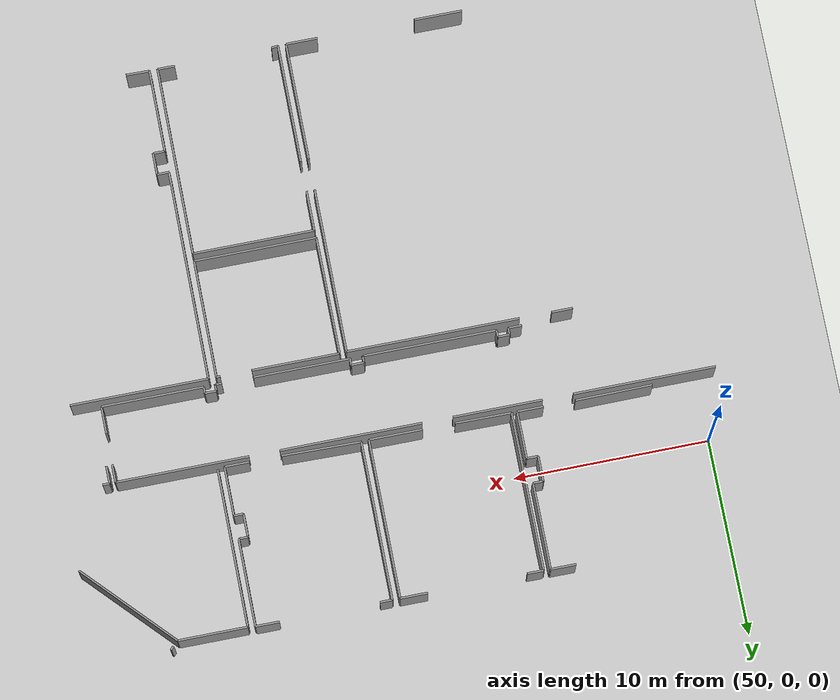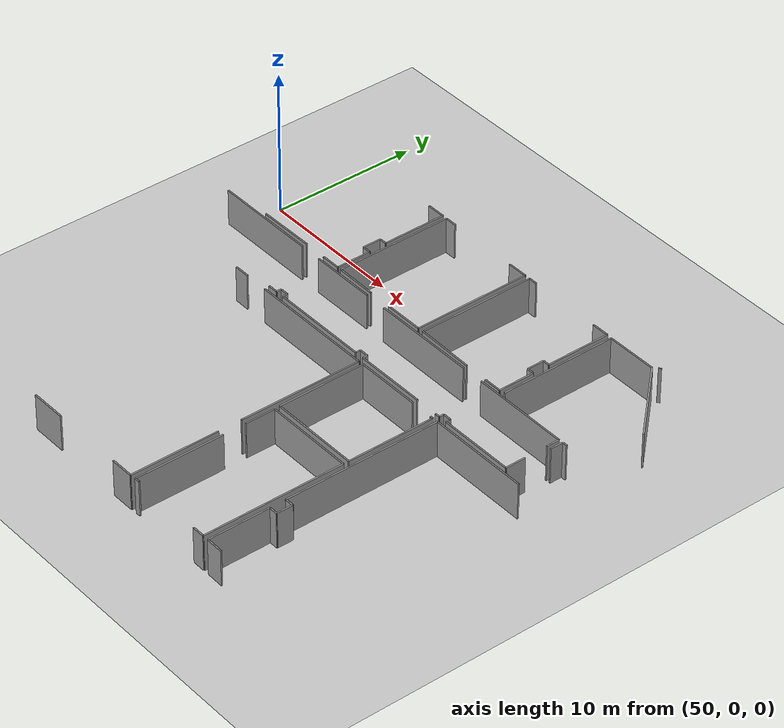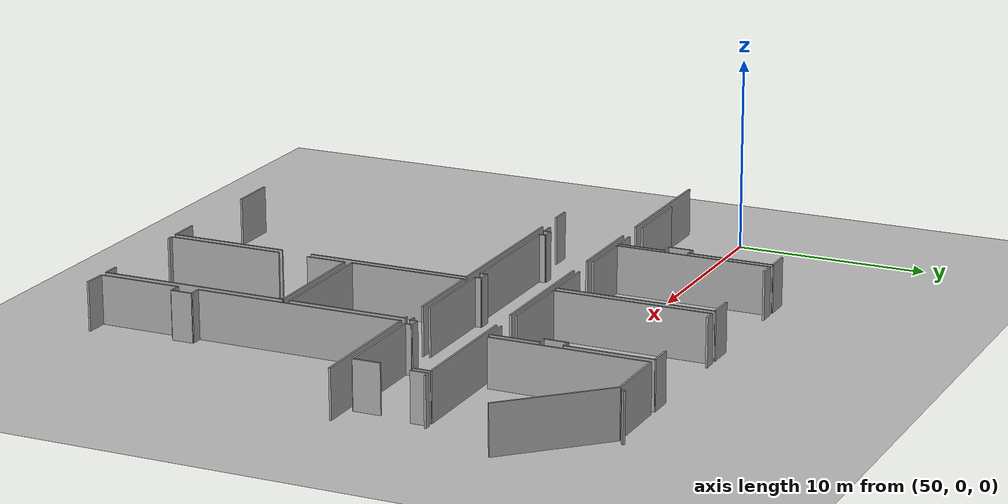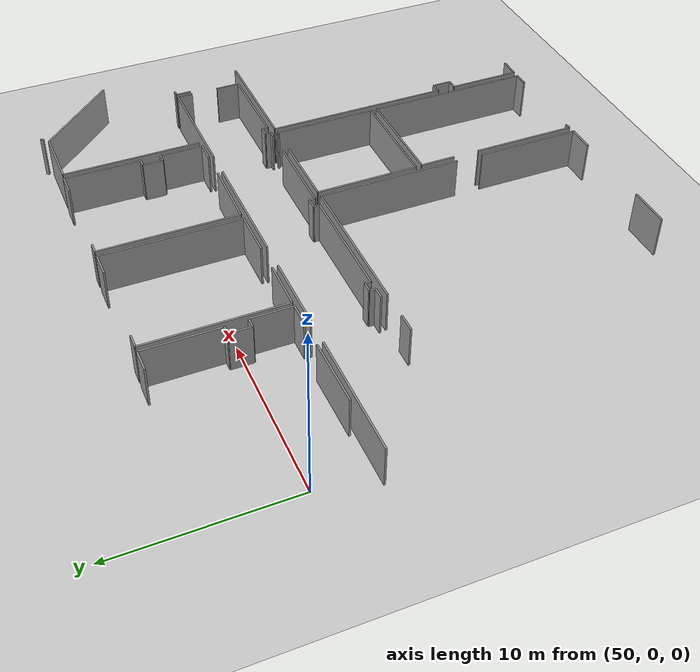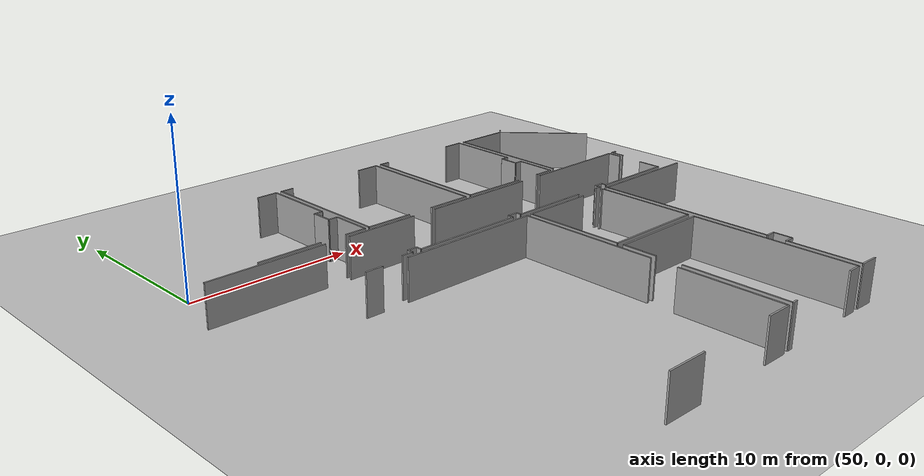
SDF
<sdf version="1.6">
 <world name="default">
  <model name="ground_plane">
   <static>1</static>
   <link name="link">
    <collision name="collision">
     <geometry><plane><normal>0 0 1</normal><size>100 100</size></plane></geometry>
     <surface><friction><ode><mu>100</mu><mu2>50</mu2></ode></friction></surface>
    </collision>
    <visual name="visual">
     <cast_shadows>0</cast_shadows>
     <geometry><plane><normal>0 0 1</normal><size>100 100</size></plane></geometry>
     <material>
      <script><uri>file://media/materials/scripts/gazebo.material</uri><name>Gazebo/Grey</name></script>
     </material>
    </visual>
   </link>
  </model>
  <model name="0510035343_A_40_1_102">
   <static>1</static>
   <link name="Wall_481">
    <collision name="Wall_481_Collision">
     <geometry><box><size>1.07677171602 0.1 2.5</size></box></geometry>
     <pose>0.538385858009 0 1.25 0 0 0</pose>
    </collision>
    <visual name="Wall_481_Visual">
     <pose>0.538385858009 0 1.25 0 0 0</pose>
     <geometry><box><size>1.07677171602 0.1 2.5</size></box></geometry>
     <material>
      <script><uri>file://media/materials/scripts/gazebo.material</uri><name>Gazebo/Grey</name></script>
      <ambient>1 1 1 1</ambient>
     </material>
    </visual>
    <pose>172.321051128 -31.8819384938 0 0 0 0.0</pose>
   </link>
   <link name="Wall_482">
    <collision name="Wall_482_Collision">
     <geometry><box><size>8.82617664794 0.1 2.5</size></box></geometry>
     <pose>4.41308832397 0 1.25 0 0 0</pose>
    </collision>
    <visual name="Wall_482_Visual">
     <pose>4.41308832397 0 1.25 0 0 0</pose>
     <geometry><box><size>8.82617664794 0.1 2.5</size></box></geometry>
     <material>
      <script><uri>file://media/materials/scripts/gazebo.material</uri><name>Gazebo/Grey</name></script>
      <ambient>1 1 1 1</ambient>
     </material>
    </visual>
    <pose>175.052715097 -31.8819384938 0 0 0 0.0</pose>
   </link>
   <link name="Wall_483">
    <collision name="Wall_483_Collision">
     <geometry><box><size>8.47630835634 0.1 2.5</size></box></geometry>
     <pose>4.23815417817 0 1.25 0 0 0</pose>
    </collision>
    <visual name="Wall_483_Visual">
     <pose>4.23815417817 0 1.25 0 0 0</pose>
     <geometry><box><size>8.47630835634 0.1 2.5</size></box></geometry>
     <material>
      <script><uri>file://media/materials/scripts/gazebo.material</uri><name>Gazebo/Grey</name></script>
      <ambient>1 1 1 1</ambient>
     </material>
    </visual>
    <pose>183.878891745 -31.8819384938 0 0 0 -1.57079632679</pose>
   </link>
   <link name="Wall_484">
    <collision name="Wall_484_Collision">
     <geometry><box><size>6.11000031737 0.1 2.5</size></box></geometry>
     <pose>3.05500015868 0 1.25 0 0 0</pose>
    </collision>
    <visual name="Wall_484_Visual">
     <pose>3.05500015868 0 1.25 0 0 0</pose>
     <geometry><box><size>6.11000031737 0.1 2.5</size></box></geometry>
     <material>
      <script><uri>file://media/materials/scripts/gazebo.material</uri><name>Gazebo/Grey</name></script>
      <ambient>1 1 1 1</ambient>
     </material>
    </visual>
    <pose>183.878891745 -41.9702307277 0 0 0 -1.57079632679</pose>
   </link>
   <link name="Wall_485">
    <collision name="Wall_485_Collision">
     <geometry><box><size>1.61122219049 0.1 2.5</size></box></geometry>
     <pose>0.805611095243 0 1.25 0 0 0</pose>
    </collision>
    <visual name="Wall_485_Visual">
     <pose>0.805611095243 0 1.25 0 0 0</pose>
     <geometry><box><size>1.61122219049 0.1 2.5</size></box></geometry>
     <material>
      <script><uri>file://media/materials/scripts/gazebo.material</uri><name>Gazebo/Grey</name></script>
      <ambient>1 1 1 1</ambient>
     </material>
    </visual>
    <pose>183.878891745 -48.0802310451 0 0 0 3.14159265359</pose>
   </link>
   <link name="Wall_486">
    <collision name="Wall_486_Collision">
     <geometry><box><size>2.45390205973 0.1 2.5</size></box></geometry>
     <pose>1.22695102986 0 1.25 0 0 0</pose>
    </collision>
    <visual name="Wall_486_Visual">
     <pose>1.22695102986 0 1.25 0 0 0</pose>
     <geometry><box><size>2.45390205973 0.1 2.5</size></box></geometry>
     <material>
      <script><uri>file://media/materials/scripts/gazebo.material</uri><name>Gazebo/Grey</name></script>
      <ambient>1 1 1 1</ambient>
     </material>
    </visual>
    <pose>177.242565616 -48.0802310451 0 0 0 3.14159265359</pose>
   </link>
   <link name="Wall_493">
    <collision name="Wall_493_Collision">
     <geometry><box><size>0.691104128979 0.1 2.5</size></box></geometry>
     <pose>0.345552064489 0 1.25 0 0 0</pose>
    </collision>
    <visual name="Wall_493_Visual">
     <pose>0.345552064489 0 1.25 0 0 0</pose>
     <geometry><box><size>0.691104128979 0.1 2.5</size></box></geometry>
     <material>
      <script><uri>file://media/materials/scripts/gazebo.material</uri><name>Gazebo/Grey</name></script>
      <ambient>1 1 1 1</ambient>
     </material>
    </visual>
    <pose>175.003967121 -31.5079501095 0 0 0 0.0</pose>
   </link>
   <link name="Wall_494">
    <collision name="Wall_494_Collision">
     <geometry><box><size>0.34555206449 0.1 2.5</size></box></geometry>
     <pose>0.172776032245 0 1.25 0 0 0</pose>
    </collision>
    <visual name="Wall_494_Visual">
     <pose>0.172776032245 0 1.25 0 0 0</pose>
     <geometry><box><size>0.34555206449 0.1 2.5</size></box></geometry>
     <material>
      <script><uri>file://media/materials/scripts/gazebo.material</uri><name>Gazebo/Grey</name></script>
      <ambient>1 1 1 1</ambient>
     </material>
    </visual>
    <pose>175.695071249 -31.5079501095 0 0 0 1.57079632679</pose>
   </link>
   <link name="Wall_495">
    <collision name="Wall_495_Collision">
     <geometry><box><size>0.595131549716 0.1 2.5</size></box></geometry>
     <pose>0.297565774858 0 1.25 0 0 0</pose>
    </collision>
    <visual name="Wall_495_Visual">
     <pose>0.297565774858 0 1.25 0 0 0</pose>
     <geometry><box><size>0.595131549716 0.1 2.5</size></box></geometry>
     <material>
      <script><uri>file://media/materials/scripts/gazebo.material</uri><name>Gazebo/Grey</name></script>
      <ambient>1 1 1 1</ambient>
     </material>
    </visual>
    <pose>175.695071249 -31.162398045 0 0 0 0.0</pose>
   </link>
   <link name="Wall_496">
    <collision name="Wall_496_Collision">
     <geometry><box><size>0.34555206449 0.1 2.5</size></box></geometry>
     <pose>0.172776032245 0 1.25 0 0 0</pose>
    </collision>
    <visual name="Wall_496_Visual">
     <pose>0.172776032245 0 1.25 0 0 0</pose>
     <geometry><box><size>0.34555206449 0.1 2.5</size></box></geometry>
     <material>
      <script><uri>file://media/materials/scripts/gazebo.material</uri><name>Gazebo/Grey</name></script>
      <ambient>1 1 1 1</ambient>
     </material>
    </visual>
    <pose>176.290202799 -31.162398045 0 0 0 -1.57079632679</pose>
   </link>
   <link name="Wall_497">
    <collision name="Wall_497_Collision">
     <geometry><box><size>6.83461868038 0.1 2.5</size></box></geometry>
     <pose>3.41730934019 0 1.25 0 0 0</pose>
    </collision>
    <visual name="Wall_497_Visual">
     <pose>3.41730934019 0 1.25 0 0 0</pose>
     <geometry><box><size>6.83461868038 0.1 2.5</size></box></geometry>
     <material>
      <script><uri>file://media/materials/scripts/gazebo.material</uri><name>Gazebo/Grey</name></script>
      <ambient>1 1 1 1</ambient>
     </material>
    </visual>
    <pose>176.290202799 -31.5079501095 0 0 0 0.0</pose>
   </link>
   <link name="Wall_498">
    <collision name="Wall_498_Collision">
     <geometry><box><size>0.34555206449 0.1 2.5</size></box></geometry>
     <pose>0.172776032245 0 1.25 0 0 0</pose>
    </collision>
    <visual name="Wall_498_Visual">
     <pose>0.172776032245 0 1.25 0 0 0</pose>
     <geometry><box><size>0.34555206449 0.1 2.5</size></box></geometry>
     <material>
      <script><uri>file://media/materials/scripts/gazebo.material</uri><name>Gazebo/Grey</name></script>
      <ambient>1 1 1 1</ambient>
     </material>
    </visual>
    <pose>183.12482148 -31.5079501095 0 0 0 1.57079632679</pose>
   </link>
   <link name="Wall_499">
    <collision name="Wall_499_Collision">
     <geometry><box><size>0.649211336444 0.1 2.5</size></box></geometry>
     <pose>0.324605668222 0 1.25 0 0 0</pose>
    </collision>
    <visual name="Wall_499_Visual">
     <pose>0.324605668222 0 1.25 0 0 0</pose>
     <geometry><box><size>0.649211336444 0.1 2.5</size></box></geometry>
     <material>
      <script><uri>file://media/materials/scripts/gazebo.material</uri><name>Gazebo/Grey</name></script>
      <ambient>1 1 1 1</ambient>
     </material>
    </visual>
    <pose>183.12482148 -31.162398045 0 0 0 0.0</pose>
   </link>
   <link name="Wall_500">
    <collision name="Wall_500_Collision">
     <geometry><box><size>0.333365070297 0.1 2.5</size></box></geometry>
     <pose>0.166682535149 0 1.25 0 0 0</pose>
    </collision>
    <visual name="Wall_500_Visual">
     <pose>0.166682535149 0 1.25 0 0 0</pose>
     <geometry><box><size>0.333365070297 0.1 2.5</size></box></geometry>
     <material>
      <script><uri>file://media/materials/scripts/gazebo.material</uri><name>Gazebo/Grey</name></script>
      <ambient>1 1 1 1</ambient>
     </material>
    </visual>
    <pose>183.774032816 -31.162398045 0 0 0 -1.57079632679</pose>
   </link>
   <link name="Wall_501">
    <collision name="Wall_501_Collision">
     <geometry><box><size>4.9250690279 0.1 2.5</size></box></geometry>
     <pose>2.46253451395 0 1.25 0 0 0</pose>
    </collision>
    <visual name="Wall_501_Visual">
     <pose>2.46253451395 0 1.25 0 0 0</pose>
     <geometry><box><size>4.9250690279 0.1 2.5</size></box></geometry>
     <material>
      <script><uri>file://media/materials/scripts/gazebo.material</uri><name>Gazebo/Grey</name></script>
      <ambient>1 1 1 1</ambient>
     </material>
    </visual>
    <pose>183.774032816 -31.4957631153 0 0 0 0.0</pose>
   </link>
   <link name="Wall_502">
    <collision name="Wall_502_Collision">
     <geometry><box><size>0.345552064489 0.1 2.5</size></box></geometry>
     <pose>0.172776032245 0 1.25 0 0 0</pose>
    </collision>
    <visual name="Wall_502_Visual">
     <pose>0.172776032245 0 1.25 0 0 0</pose>
     <geometry><box><size>0.345552064489 0.1 2.5</size></box></geometry>
     <material>
      <script><uri>file://media/materials/scripts/gazebo.material</uri><name>Gazebo/Grey</name></script>
      <ambient>1 1 1 1</ambient>
     </material>
    </visual>
    <pose>190.304992224 -31.4957631153 0 0 0 0.0</pose>
   </link>
   <link name="Wall_503">
    <collision name="Wall_503_Collision">
     <geometry><box><size>0.333365070297 0.1 2.5</size></box></geometry>
     <pose>0.166682535149 0 1.25 0 0 0</pose>
    </collision>
    <visual name="Wall_503_Visual">
     <pose>0.166682535149 0 1.25 0 0 0</pose>
     <geometry><box><size>0.333365070297 0.1 2.5</size></box></geometry>
     <material>
      <script><uri>file://media/materials/scripts/gazebo.material</uri><name>Gazebo/Grey</name></script>
      <ambient>1 1 1 1</ambient>
     </material>
    </visual>
    <pose>190.650544289 -31.4957631153 0 0 0 1.57079632679</pose>
   </link>
   <link name="Wall_504">
    <collision name="Wall_504_Collision">
     <geometry><box><size>0.575835475578 0.1 2.5</size></box></geometry>
     <pose>0.287917737789 0 1.25 0 0 0</pose>
    </collision>
    <visual name="Wall_504_Visual">
     <pose>0.287917737789 0 1.25 0 0 0</pose>
     <geometry><box><size>0.575835475578 0.1 2.5</size></box></geometry>
     <material>
      <script><uri>file://media/materials/scripts/gazebo.material</uri><name>Gazebo/Grey</name></script>
      <ambient>1 1 1 1</ambient>
     </material>
    </visual>
    <pose>190.650544289 -31.162398045 0 0 0 0.0</pose>
   </link>
   <link name="Wall_505">
    <collision name="Wall_505_Collision">
     <geometry><box><size>0.326255990352 0.1 2.5</size></box></geometry>
     <pose>0.163127995176 0 1.25 0 0 0</pose>
    </collision>
    <visual name="Wall_505_Visual">
     <pose>0.163127995176 0 1.25 0 0 0</pose>
     <geometry><box><size>0.326255990352 0.1 2.5</size></box></geometry>
     <material>
      <script><uri>file://media/materials/scripts/gazebo.material</uri><name>Gazebo/Grey</name></script>
      <ambient>1 1 1 1</ambient>
     </material>
    </visual>
    <pose>191.226379765 -31.162398045 0 0 0 -1.57079632679</pose>
   </link>
   <link name="Wall_506">
    <collision name="Wall_506_Collision">
     <geometry><box><size>5.20283093719 0.1 2.5</size></box></geometry>
     <pose>2.6014154686 0 1.25 0 0 0</pose>
    </collision>
    <visual name="Wall_506_Visual">
     <pose>2.6014154686 0 1.25 0 0 0</pose>
     <geometry><box><size>5.20283093719 0.1 2.5</size></box></geometry>
     <material>
      <script><uri>file://media/materials/scripts/gazebo.material</uri><name>Gazebo/Grey</name></script>
      <ambient>1 1 1 1</ambient>
     </material>
    </visual>
    <pose>191.226379765 -31.4886540354 0 0 0 0.0</pose>
   </link>
   <link name="Wall_507">
    <collision name="Wall_507_Collision">
     <geometry><box><size>1.40125043638 0.1 2.5</size></box></geometry>
     <pose>0.700625218192 0 1.25 0 0 0</pose>
    </collision>
    <visual name="Wall_507_Visual">
     <pose>0.700625218192 0 1.25 0 0 0</pose>
     <geometry><box><size>1.40125043638 0.1 2.5</size></box></geometry>
     <material>
      <script><uri>file://media/materials/scripts/gazebo.material</uri><name>Gazebo/Grey</name></script>
      <ambient>1 1 1 1</ambient>
     </material>
    </visual>
    <pose>196.429210702 -31.4886540354 0 0 0 1.57079632679</pose>
   </link>
   <link name="Wall_508">
    <collision name="Wall_508_Collision">
     <geometry><box><size>0.900060300232 0.1 2.5</size></box></geometry>
     <pose>0.450030150116 0 1.25 0 0 0</pose>
    </collision>
    <visual name="Wall_508_Visual">
     <pose>0.450030150116 0 1.25 0 0 0</pose>
     <geometry><box><size>0.900060300232 0.1 2.5</size></box></geometry>
     <material>
      <script><uri>file://media/materials/scripts/gazebo.material</uri><name>Gazebo/Grey</name></script>
      <ambient>1 1 1 1</ambient>
     </material>
    </visual>
    <pose>196.429210702 -28.4850677584 0 0 0 1.57079632679</pose>
   </link>
   <link name="Wall_509">
    <collision name="Wall_509_Collision">
     <geometry><box><size>6.77266812657 0.1 2.5</size></box></geometry>
     <pose>3.38633406328 0 1.25 0 0 0</pose>
    </collision>
    <visual name="Wall_509_Visual">
     <pose>3.38633406328 0 1.25 0 0 0</pose>
     <geometry><box><size>6.77266812657 0.1 2.5</size></box></geometry>
     <material>
      <script><uri>file://media/materials/scripts/gazebo.material</uri><name>Gazebo/Grey</name></script>
      <ambient>1 1 1 1</ambient>
     </material>
    </visual>
    <pose>196.429210702 -27.5850074582 0 0 0 3.14159265359</pose>
   </link>
   <link name="Wall_510">
    <collision name="Wall_510_Collision">
     <geometry><box><size>7.23348884446 0.1 2.5</size></box></geometry>
     <pose>3.61674442223 0 1.25 0 0 0</pose>
    </collision>
    <visual name="Wall_510_Visual">
     <pose>3.61674442223 0 1.25 0 0 0</pose>
     <geometry><box><size>7.23348884446 0.1 2.5</size></box></geometry>
     <material>
      <script><uri>file://media/materials/scripts/gazebo.material</uri><name>Gazebo/Grey</name></script>
      <ambient>1 1 1 1</ambient>
     </material>
    </visual>
    <pose>188.10066965 -27.5850074582 0 0 0 3.14159265359</pose>
   </link>
   <link name="Wall_511">
    <collision name="Wall_511_Collision">
     <geometry><box><size>4.5650449078 0.1 2.5</size></box></geometry>
     <pose>2.2825224539 0 1.25 0 0 0</pose>
    </collision>
    <visual name="Wall_511_Visual">
     <pose>2.2825224539 0 1.25 0 0 0</pose>
     <geometry><box><size>4.5650449078 0.1 2.5</size></box></geometry>
     <material>
      <script><uri>file://media/materials/scripts/gazebo.material</uri><name>Gazebo/Grey</name></script>
      <ambient>1 1 1 1</ambient>
     </material>
    </visual>
    <pose>179.295566346 -27.5850074582 0 0 0 3.14159265359</pose>
   </link>
   <link name="Wall_512">
    <collision name="Wall_512_Collision">
     <geometry><box><size>7.26370243423 0.1 2.5</size></box></geometry>
     <pose>3.63185121711 0 1.25 0 0 0</pose>
    </collision>
    <visual name="Wall_512_Visual">
     <pose>3.63185121711 0 1.25 0 0 0</pose>
     <geometry><box><size>7.26370243423 0.1 2.5</size></box></geometry>
     <material>
      <script><uri>file://media/materials/scripts/gazebo.material</uri><name>Gazebo/Grey</name></script>
      <ambient>1 1 1 1</ambient>
     </material>
    </visual>
    <pose>173.160176458 -27.5850074582 0 0 0 3.14159265359</pose>
   </link>
   <link name="Wall_524">
    <collision name="Wall_524_Collision">
     <geometry><box><size>6.11380875305 0.1 2.5</size></box></geometry>
     <pose>3.05690437653 0 1.25 0 0 0</pose>
    </collision>
    <visual name="Wall_524_Visual">
     <pose>3.05690437653 0 1.25 0 0 0</pose>
     <geometry><box><size>6.11380875305 0.1 2.5</size></box></geometry>
     <material>
      <script><uri>file://media/materials/scripts/gazebo.material</uri><name>Gazebo/Grey</name></script>
      <ambient>1 1 1 1</ambient>
     </material>
    </visual>
    <pose>184.291980069 -48.0566187439 0 0 0 1.57079632679</pose>
   </link>
   <link name="Wall_525">
    <collision name="Wall_525_Collision">
     <geometry><box><size>2.06137928846 0.1 2.5</size></box></geometry>
     <pose>1.03068964423 0 1.25 0 0 0</pose>
    </collision>
    <visual name="Wall_525_Visual">
     <pose>1.03068964423 0 1.25 0 0 0</pose>
     <geometry><box><size>2.06137928846 0.1 2.5</size></box></geometry>
     <material>
      <script><uri>file://media/materials/scripts/gazebo.material</uri><name>Gazebo/Grey</name></script>
      <ambient>1 1 1 1</ambient>
     </material>
    </visual>
    <pose>184.291980069 -40.3595163287 0 0 0 1.57079632679</pose>
   </link>
   <link name="Wall_526">
    <collision name="Wall_526_Collision">
     <geometry><box><size>6.22095274366 0.1 2.5</size></box></geometry>
     <pose>3.11047637183 0 1.25 0 0 0</pose>
    </collision>
    <visual name="Wall_526_Visual">
     <pose>3.11047637183 0 1.25 0 0 0</pose>
     <geometry><box><size>6.22095274366 0.1 2.5</size></box></geometry>
     <material>
      <script><uri>file://media/materials/scripts/gazebo.material</uri><name>Gazebo/Grey</name></script>
      <ambient>1 1 1 1</ambient>
     </material>
    </visual>
    <pose>184.291980069 -38.2981370402 0 0 0 0.0</pose>
   </link>
   <link name="Wall_527">
    <collision name="Wall_527_Collision">
     <geometry><box><size>9.73943952522 0.1 2.5</size></box></geometry>
     <pose>4.86971976261 0 1.25 0 0 0</pose>
    </collision>
    <visual name="Wall_527_Visual">
     <pose>4.86971976261 0 1.25 0 0 0</pose>
     <geometry><box><size>9.73943952522 0.1 2.5</size></box></geometry>
     <material>
      <script><uri>file://media/materials/scripts/gazebo.material</uri><name>Gazebo/Grey</name></script>
      <ambient>1 1 1 1</ambient>
     </material>
    </visual>
    <pose>190.512932813 -38.2981370402 0 0 0 -1.57079632679</pose>
   </link>
   <link name="Wall_528">
    <collision name="Wall_528_Collision">
     <geometry><box><size>0.880002538957 0.1 2.5</size></box></geometry>
     <pose>0.440001269479 0 1.25 0 0 0</pose>
    </collision>
    <visual name="Wall_528_Visual">
     <pose>0.440001269479 0 1.25 0 0 0</pose>
     <geometry><box><size>0.880002538957 0.1 2.5</size></box></geometry>
     <material>
      <script><uri>file://media/materials/scripts/gazebo.material</uri><name>Gazebo/Grey</name></script>
      <ambient>1 1 1 1</ambient>
     </material>
    </visual>
    <pose>190.512932813 -48.0375765654 0 0 0 3.14159265359</pose>
   </link>
   <link name="Wall_529">
    <collision name="Wall_529_Collision">
     <geometry><box><size>0.349879070025 0.1 2.5</size></box></geometry>
     <pose>0.174939535012 0 1.25 0 0 0</pose>
    </collision>
    <visual name="Wall_529_Visual">
     <pose>0.174939535012 0 1.25 0 0 0</pose>
     <geometry><box><size>0.349879070025 0.1 2.5</size></box></geometry>
     <material>
      <script><uri>file://media/materials/scripts/gazebo.material</uri><name>Gazebo/Grey</name></script>
      <ambient>1 1 1 1</ambient>
     </material>
    </visual>
    <pose>184.641340569 -48.0375765654 0 0 0 -3.08714072044</pose>
   </link>
   <link name="Wall_530">
    <collision name="Wall_530_Collision">
     <geometry><box><size>6.2567520391 0.1 2.5</size></box></geometry>
     <pose>3.12837601955 0 1.25 0 0 0</pose>
    </collision>
    <visual name="Wall_530_Visual">
     <pose>3.12837601955 0 1.25 0 0 0</pose>
     <geometry><box><size>6.2567520391 0.1 2.5</size></box></geometry>
     <material>
      <script><uri>file://media/materials/scripts/gazebo.material</uri><name>Gazebo/Grey</name></script>
      <ambient>1 1 1 1</ambient>
     </material>
    </visual>
    <pose>184.258973627 -37.9142467232 0 0 0 0.0</pose>
   </link>
   <link name="Wall_531">
    <collision name="Wall_531_Collision">
     <geometry><box><size>6.05896727919 0.1 2.5</size></box></geometry>
     <pose>3.0294836396 0 1.25 0 0 0</pose>
    </collision>
    <visual name="Wall_531_Visual">
     <pose>3.0294836396 0 1.25 0 0 0</pose>
     <geometry><box><size>6.05896727919 0.1 2.5</size></box></geometry>
     <material>
      <script><uri>file://media/materials/scripts/gazebo.material</uri><name>Gazebo/Grey</name></script>
      <ambient>1 1 1 1</ambient>
     </material>
    </visual>
    <pose>190.515725666 -37.9142467232 0 0 0 1.57079632679</pose>
   </link>
   <link name="Wall_532">
    <collision name="Wall_532_Collision">
     <geometry><box><size>0.19778475991 0.1 2.5</size></box></geometry>
     <pose>0.0988923799549 0 1.25 0 0 0</pose>
    </collision>
    <visual name="Wall_532_Visual">
     <pose>0.0988923799549 0 1.25 0 0 0</pose>
     <geometry><box><size>0.19778475991 0.1 2.5</size></box></geometry>
     <material>
      <script><uri>file://media/materials/scripts/gazebo.material</uri><name>Gazebo/Grey</name></script>
      <ambient>1 1 1 1</ambient>
     </material>
    </visual>
    <pose>190.515725666 -31.855279444 0 0 0 3.14159265359</pose>
   </link>
   <link name="Wall_533">
    <collision name="Wall_533_Collision">
     <geometry><box><size>4.47313465994 0.1 2.5</size></box></geometry>
     <pose>2.23656732997 0 1.25 0 0 0</pose>
    </collision>
    <visual name="Wall_533_Visual">
     <pose>2.23656732997 0 1.25 0 0 0</pose>
     <geometry><box><size>4.47313465994 0.1 2.5</size></box></geometry>
     <material>
      <script><uri>file://media/materials/scripts/gazebo.material</uri><name>Gazebo/Grey</name></script>
      <ambient>1 1 1 1</ambient>
     </material>
    </visual>
    <pose>188.711542734 -31.855279444 0 0 0 3.14159265359</pose>
   </link>
   <link name="Wall_534">
    <collision name="Wall_534_Collision">
     <geometry><box><size>6.05900218124 0.1 2.5</size></box></geometry>
     <pose>3.02950109062 0 1.25 0 0 0</pose>
    </collision>
    <visual name="Wall_534_Visual">
     <pose>3.02950109062 0 1.25 0 0 0</pose>
     <geometry><box><size>6.05900218124 0.1 2.5</size></box></geometry>
     <material>
      <script><uri>file://media/materials/scripts/gazebo.material</uri><name>Gazebo/Grey</name></script>
      <ambient>1 1 1 1</ambient>
     </material>
    </visual>
    <pose>184.238408074 -31.855279444 0 0 0 -1.56740210584</pose>
   </link>
   <link name="Wall_535">
    <collision name="Wall_535_Collision">
     <geometry><box><size>8.10003491066 0.1 2.5</size></box></geometry>
     <pose>4.05001745533 0 1.25 0 0 0</pose>
    </collision>
    <visual name="Wall_535_Visual">
     <pose>4.05001745533 0 1.25 0 0 0</pose>
     <geometry><box><size>8.10003491066 0.1 2.5</size></box></geometry>
     <material>
      <script><uri>file://media/materials/scripts/gazebo.material</uri><name>Gazebo/Grey</name></script>
      <ambient>1 1 1 1</ambient>
     </material>
    </visual>
    <pose>184.024120093 -27.2364086451 0 0 0 1.57079632679</pose>
   </link>
   <link name="Wall_536">
    <collision name="Wall_536_Collision">
     <geometry><box><size>0.624075660922 0.1 2.5</size></box></geometry>
     <pose>0.312037830461 0 1.25 0 0 0</pose>
    </collision>
    <visual name="Wall_536_Visual">
     <pose>0.312037830461 0 1.25 0 0 0</pose>
     <geometry><box><size>0.624075660922 0.1 2.5</size></box></geometry>
     <material>
      <script><uri>file://media/materials/scripts/gazebo.material</uri><name>Gazebo/Grey</name></script>
      <ambient>1 1 1 1</ambient>
     </material>
    </visual>
    <pose>184.024120093 -19.1363737345 0 0 0 0.0</pose>
   </link>
   <link name="Wall_537">
    <collision name="Wall_537_Collision">
     <geometry><box><size>1.21920721064 0.1 2.5</size></box></geometry>
     <pose>0.609603605319 0 1.25 0 0 0</pose>
    </collision>
    <visual name="Wall_537_Visual">
     <pose>0.609603605319 0 1.25 0 0 0</pose>
     <geometry><box><size>1.21920721064 0.1 2.5</size></box></geometry>
     <material>
      <script><uri>file://media/materials/scripts/gazebo.material</uri><name>Gazebo/Grey</name></script>
      <ambient>1 1 1 1</ambient>
     </material>
    </visual>
    <pose>189.714684693 -19.1363737345 0 0 0 0.0</pose>
   </link>
   <link name="Wall_538">
    <collision name="Wall_538_Collision">
     <geometry><box><size>4.46475610143 0.1 2.5</size></box></geometry>
     <pose>2.23237805072 0 1.25 0 0 0</pose>
    </collision>
    <visual name="Wall_538_Visual">
     <pose>2.23237805072 0 1.25 0 0 0</pose>
     <geometry><box><size>4.46475610143 0.1 2.5</size></box></geometry>
     <material>
      <script><uri>file://media/materials/scripts/gazebo.material</uri><name>Gazebo/Grey</name></script>
      <ambient>1 1 1 1</ambient>
     </material>
    </visual>
    <pose>190.933891904 -19.1363737345 0 0 0 -1.57079632679</pose>
   </link>
   <link name="Wall_539">
    <collision name="Wall_539_Collision">
     <geometry><box><size>0.464883049287 0.1 2.5</size></box></geometry>
     <pose>0.232441524644 0 1.25 0 0 0</pose>
    </collision>
    <visual name="Wall_539_Visual">
     <pose>0.232441524644 0 1.25 0 0 0</pose>
     <geometry><box><size>0.464883049287 0.1 2.5</size></box></geometry>
     <material>
      <script><uri>file://media/materials/scripts/gazebo.material</uri><name>Gazebo/Grey</name></script>
      <ambient>1 1 1 1</ambient>
     </material>
    </visual>
    <pose>190.933891904 -23.6011298359 0 0 0 3.14159265359</pose>
   </link>
   <link name="Wall_540">
    <collision name="Wall_540_Collision">
     <geometry><box><size>1.19229426513 0.1 2.5</size></box></geometry>
     <pose>0.596147132565 0 1.25 0 0 0</pose>
    </collision>
    <visual name="Wall_540_Visual">
     <pose>0.596147132565 0 1.25 0 0 0</pose>
     <geometry><box><size>1.19229426513 0.1 2.5</size></box></geometry>
     <material>
      <script><uri>file://media/materials/scripts/gazebo.material</uri><name>Gazebo/Grey</name></script>
      <ambient>1 1 1 1</ambient>
     </material>
    </visual>
    <pose>190.469008855 -23.6011298359 0 0 0 -1.57079632679</pose>
   </link>
   <link name="Wall_541">
    <collision name="Wall_541_Collision">
     <geometry><box><size>0.485702497699 0.1 2.5</size></box></geometry>
     <pose>0.24285124885 0 1.25 0 0 0</pose>
    </collision>
    <visual name="Wall_541_Visual">
     <pose>0.24285124885 0 1.25 0 0 0</pose>
     <geometry><box><size>0.485702497699 0.1 2.5</size></box></geometry>
     <material>
      <script><uri>file://media/materials/scripts/gazebo.material</uri><name>Gazebo/Grey</name></script>
      <ambient>1 1 1 1</ambient>
     </material>
    </visual>
    <pose>190.469008855 -24.7934241011 0 0 0 0.0</pose>
   </link>
   <link name="Wall_542">
    <collision name="Wall_542_Collision">
     <geometry><box><size>2.51686819639 0.1 2.5</size></box></geometry>
     <pose>1.25843409819 0 1.25 0 0 0</pose>
    </collision>
    <visual name="Wall_542_Visual">
     <pose>1.25843409819 0 1.25 0 0 0</pose>
     <geometry><box><size>2.51686819639 0.1 2.5</size></box></geometry>
     <material>
      <script><uri>file://media/materials/scripts/gazebo.material</uri><name>Gazebo/Grey</name></script>
      <ambient>1 1 1 1</ambient>
     </material>
    </visual>
    <pose>190.954711352 -24.7934241011 0 0 0 -1.57079632679</pose>
   </link>
   <link name="Wall_543">
    <collision name="Wall_543_Collision">
     <geometry><box><size>1.25830715034 0.1 2.5</size></box></geometry>
     <pose>0.629153575169 0 1.25 0 0 0</pose>
    </collision>
    <visual name="Wall_543_Visual">
     <pose>0.629153575169 0 1.25 0 0 0</pose>
     <geometry><box><size>1.25830715034 0.1 2.5</size></box></geometry>
     <material>
      <script><uri>file://media/materials/scripts/gazebo.material</uri><name>Gazebo/Grey</name></script>
      <ambient>1 1 1 1</ambient>
     </material>
    </visual>
    <pose>190.954711352 -27.3102922974 0 0 0 3.14159265359</pose>
   </link>
   <link name="Wall_544">
    <collision name="Wall_544_Collision">
     <geometry><box><size>4.03330237102 0.1 2.5</size></box></geometry>
     <pose>2.01665118551 0 1.25 0 0 0</pose>
    </collision>
    <visual name="Wall_544_Visual">
     <pose>2.01665118551 0 1.25 0 0 0</pose>
     <geometry><box><size>4.03330237102 0.1 2.5</size></box></geometry>
     <material>
      <script><uri>file://media/materials/scripts/gazebo.material</uri><name>Gazebo/Grey</name></script>
      <ambient>1 1 1 1</ambient>
     </material>
    </visual>
    <pose>188.056745692 -27.3102922974 0 0 0 3.12327322741</pose>
   </link>
   <link name="Wall_545">
    <collision name="Wall_545_Collision">
     <geometry><box><size>8.10003491066 0.1 2.5</size></box></geometry>
     <pose>4.05001745533 0 1.25 0 0 0</pose>
    </collision>
    <visual name="Wall_545_Visual">
     <pose>4.05001745533 0 1.25 0 0 0</pose>
     <geometry><box><size>8.10003491066 0.1 2.5</size></box></geometry>
     <material>
      <script><uri>file://media/materials/scripts/gazebo.material</uri><name>Gazebo/Grey</name></script>
      <ambient>1 1 1 1</ambient>
     </material>
    </visual>
    <pose>176.373734489 -27.2364086451 0 0 0 1.57079632679</pose>
   </link>
   <link name="Wall_546">
    <collision name="Wall_546_Collision">
     <geometry><box><size>0.827446126504 0.1 2.5</size></box></geometry>
     <pose>0.413723063252 0 1.25 0 0 0</pose>
    </collision>
    <visual name="Wall_546_Visual">
     <pose>0.413723063252 0 1.25 0 0 0</pose>
     <geometry><box><size>0.827446126504 0.1 2.5</size></box></geometry>
     <material>
      <script><uri>file://media/materials/scripts/gazebo.material</uri><name>Gazebo/Grey</name></script>
      <ambient>1 1 1 1</ambient>
     </material>
    </visual>
    <pose>176.373734489 -19.1363737345 0 0 0 0.0</pose>
   </link>
   <link name="Wall_547">
    <collision name="Wall_547_Collision">
     <geometry><box><size>1.40810562062 0.1 2.5</size></box></geometry>
     <pose>0.704052810308 0 1.25 0 0 0</pose>
    </collision>
    <visual name="Wall_547_Visual">
     <pose>0.704052810308 0 1.25 0 0 0</pose>
     <geometry><box><size>1.40810562062 0.1 2.5</size></box></geometry>
     <material>
      <script><uri>file://media/materials/scripts/gazebo.material</uri><name>Gazebo/Grey</name></script>
      <ambient>1 1 1 1</ambient>
     </material>
    </visual>
    <pose>182.223999492 -19.1363737345 0 0 0 0.0</pose>
   </link>
   <link name="Wall_548">
    <collision name="Wall_548_Collision">
     <geometry><box><size>8.12923291758 0.1 2.5</size></box></geometry>
     <pose>4.06461645879 0 1.25 0 0 0</pose>
    </collision>
    <visual name="Wall_548_Visual">
     <pose>4.06461645879 0 1.25 0 0 0</pose>
     <geometry><box><size>8.12923291758 0.1 2.5</size></box></geometry>
     <material>
      <script><uri>file://media/materials/scripts/gazebo.material</uri><name>Gazebo/Grey</name></script>
      <ambient>1 1 1 1</ambient>
     </material>
    </visual>
    <pose>183.632105113 -19.1363737345 0 0 0 -1.57079632679</pose>
   </link>
   <link name="Wall_549">
    <collision name="Wall_549_Collision">
     <geometry><box><size>2.7291250119 0.1 2.5</size></box></geometry>
     <pose>1.36456250595 0 1.25 0 0 0</pose>
    </collision>
    <visual name="Wall_549_Visual">
     <pose>1.36456250595 0 1.25 0 0 0</pose>
     <geometry><box><size>2.7291250119 0.1 2.5</size></box></geometry>
     <material>
      <script><uri>file://media/materials/scripts/gazebo.material</uri><name>Gazebo/Grey</name></script>
      <ambient>1 1 1 1</ambient>
     </material>
    </visual>
    <pose>183.632105113 -27.2656066521 0 0 0 3.14159265359</pose>
   </link>
   <link name="Wall_550">
    <collision name="Wall_550_Collision">
     <geometry><box><size>2.87627883222 0.1 2.5</size></box></geometry>
     <pose>1.43813941611 0 1.25 0 0 0</pose>
    </collision>
    <visual name="Wall_550_Visual">
     <pose>1.43813941611 0 1.25 0 0 0</pose>
     <geometry><box><size>2.87627883222 0.1 2.5</size></box></geometry>
     <material>
      <script><uri>file://media/materials/scripts/gazebo.material</uri><name>Gazebo/Grey</name></script>
      <ambient>1 1 1 1</ambient>
     </material>
    </visual>
    <pose>179.249865118 -27.2656066521 0 0 0 3.13144116616</pose>
   </link>
   <link name="Wall_553">
    <collision name="Wall_553_Collision">
     <geometry><box><size>1.28648957441 0.1 2.5</size></box></geometry>
     <pose>0.643244787204 0 1.25 0 0 0</pose>
    </collision>
    <visual name="Wall_553_Visual">
     <pose>0.643244787204 0 1.25 0 0 0</pose>
     <geometry><box><size>1.28648957441 0.1 2.5</size></box></geometry>
     <material>
      <script><uri>file://media/materials/scripts/gazebo.material</uri><name>Gazebo/Grey</name></script>
      <ambient>1 1 1 1</ambient>
     </material>
    </visual>
    <pose>174.735091561 -19.1252023231 0 0 0 0.0</pose>
   </link>
   <link name="Wall_554">
    <collision name="Wall_554_Collision">
     <geometry><box><size>4.4147386461 0.1 2.5</size></box></geometry>
     <pose>2.20736932305 0 1.25 0 0 0</pose>
    </collision>
    <visual name="Wall_554_Visual">
     <pose>2.20736932305 0 1.25 0 0 0</pose>
     <geometry><box><size>4.4147386461 0.1 2.5</size></box></geometry>
     <material>
      <script><uri>file://media/materials/scripts/gazebo.material</uri><name>Gazebo/Grey</name></script>
      <ambient>1 1 1 1</ambient>
     </material>
    </visual>
    <pose>176.021581136 -19.1252023231 0 0 0 -1.57079632679</pose>
   </link>
   <link name="Wall_555">
    <collision name="Wall_555_Collision">
     <geometry><box><size>0.51515440033 0.1 2.5</size></box></geometry>
     <pose>0.257577200165 0 1.25 0 0 0</pose>
    </collision>
    <visual name="Wall_555_Visual">
     <pose>0.257577200165 0 1.25 0 0 0</pose>
     <geometry><box><size>0.51515440033 0.1 2.5</size></box></geometry>
     <material>
      <script><uri>file://media/materials/scripts/gazebo.material</uri><name>Gazebo/Grey</name></script>
      <ambient>1 1 1 1</ambient>
     </material>
    </visual>
    <pose>176.021581136 -23.5399409692 0 0 0 3.14159265359</pose>
   </link>
   <link name="Wall_556">
    <collision name="Wall_556_Collision">
     <geometry><box><size>1.28547399156 0.1 2.5</size></box></geometry>
     <pose>0.642736995779 0 1.25 0 0 0</pose>
    </collision>
    <visual name="Wall_556_Visual">
     <pose>0.642736995779 0 1.25 0 0 0</pose>
     <geometry><box><size>1.28547399156 0.1 2.5</size></box></geometry>
     <material>
      <script><uri>file://media/materials/scripts/gazebo.material</uri><name>Gazebo/Grey</name></script>
      <ambient>1 1 1 1</ambient>
     </material>
    </visual>
    <pose>175.506426735 -23.5399409692 0 0 0 -1.57079632679</pose>
   </link>
   <link name="Wall_557">
    <collision name="Wall_557_Collision">
     <geometry><box><size>0.584214034086 0.1 2.5</size></box></geometry>
     <pose>0.292107017043 0 1.25 0 0 0</pose>
    </collision>
    <visual name="Wall_557_Visual">
     <pose>0.292107017043 0 1.25 0 0 0</pose>
     <geometry><box><size>0.584214034086 0.1 2.5</size></box></geometry>
     <material>
      <script><uri>file://media/materials/scripts/gazebo.material</uri><name>Gazebo/Grey</name></script>
      <ambient>1 1 1 1</ambient>
     </material>
    </visual>
    <pose>175.506426735 -24.8254149608 0 0 0 0.0</pose>
   </link>
   <link name="Wall_558">
    <collision name="Wall_558_Collision">
     <geometry><box><size>2.42064172141 0.1 2.5</size></box></geometry>
     <pose>1.21032086071 0 1.25 0 0 0</pose>
    </collision>
    <visual name="Wall_558_Visual">
     <pose>1.21032086071 0 1.25 0 0 0</pose>
     <geometry><box><size>2.42064172141 0.1 2.5</size></box></geometry>
     <material>
      <script><uri>file://media/materials/scripts/gazebo.material</uri><name>Gazebo/Grey</name></script>
      <ambient>1 1 1 1</ambient>
     </material>
    </visual>
    <pose>176.090640769 -24.8254149608 0 0 0 -1.57079632679</pose>
   </link>
   <link name="Wall_559">
    <collision name="Wall_559_Collision">
     <geometry><box><size>1.33549144689 0.1 2.5</size></box></geometry>
     <pose>0.667745723444 0 1.25 0 0 0</pose>
    </collision>
    <visual name="Wall_559_Visual">
     <pose>0.667745723444 0 1.25 0 0 0</pose>
     <geometry><box><size>1.33549144689 0.1 2.5</size></box></geometry>
     <material>
      <script><uri>file://media/materials/scripts/gazebo.material</uri><name>Gazebo/Grey</name></script>
      <ambient>1 1 1 1</ambient>
     </material>
    </visual>
    <pose>176.090640769 -27.2460566822 0 0 0 3.14159265359</pose>
   </link>
   <link name="Wall_560">
    <collision name="Wall_560_Collision">
     <geometry><box><size>3.93805243972 0.1 2.5</size></box></geometry>
     <pose>1.96902621986 0 1.25 0 0 0</pose>
    </collision>
    <visual name="Wall_560_Visual">
     <pose>1.96902621986 0 1.25 0 0 0</pose>
     <geometry><box><size>3.93805243972 0.1 2.5</size></box></geometry>
     <material>
      <script><uri>file://media/materials/scripts/gazebo.material</uri><name>Gazebo/Grey</name></script>
      <ambient>1 1 1 1</ambient>
     </material>
    </visual>
    <pose>173.125900536 -27.2460566822 0 0 0 -3.13346904119</pose>
   </link>
   <link name="Wall_570">
    <collision name="Wall_570_Collision">
     <geometry><box><size>0.883303183217 0.1 2.5</size></box></geometry>
     <pose>0.441651591609 0 1.25 0 0 0</pose>
    </collision>
    <visual name="Wall_570_Visual">
     <pose>0.441651591609 0 1.25 0 0 0</pose>
     <geometry><box><size>0.883303183217 0.1 2.5</size></box></geometry>
     <material>
      <script><uri>file://media/materials/scripts/gazebo.material</uri><name>Gazebo/Grey</name></script>
      <ambient>1 1 1 1</ambient>
     </material>
    </visual>
    <pose>196.726522581 -28.4584087086 0 0 0 1.57079632679</pose>
   </link>
   <link name="Wall_571">
    <collision name="Wall_571_Collision">
     <geometry><box><size>0.348598813038 0.1 2.5</size></box></geometry>
     <pose>0.174299406519 0 1.25 0 0 0</pose>
    </collision>
    <visual name="Wall_571_Visual">
     <pose>0.174299406519 0 1.25 0 0 0</pose>
     <geometry><box><size>0.348598813038 0.1 2.5</size></box></geometry>
     <material>
      <script><uri>file://media/materials/scripts/gazebo.material</uri><name>Gazebo/Grey</name></script>
      <ambient>1 1 1 1</ambient>
     </material>
    </visual>
    <pose>196.726522581 -27.5751055254 0 0 0 0.0</pose>
   </link>
   <link name="Wall_593">
    <collision name="Wall_593_Collision">
     <geometry><box><size>4.25706940874 0.1 2.5</size></box></geometry>
     <pose>2.12853470437 0 1.25 0 0 0</pose>
    </collision>
    <visual name="Wall_593_Visual">
     <pose>2.12853470437 0 1.25 0 0 0</pose>
     <geometry><box><size>4.25706940874 0.1 2.5</size></box></geometry>
     <material>
      <script><uri>file://media/materials/scripts/gazebo.material</uri><name>Gazebo/Grey</name></script>
      <ambient>1 1 1 1</ambient>
     </material>
    </visual>
    <pose>190.932622425 -48.0276746326 0 0 0 1.57079632679</pose>
   </link>
   <link name="Wall_594">
    <collision name="Wall_594_Collision">
     <geometry><box><size>0.601478942524 0.1 2.5</size></box></geometry>
     <pose>0.300739471262 0 1.25 0 0 0</pose>
    </collision>
    <visual name="Wall_594_Visual">
     <pose>0.300739471262 0 1.25 0 0 0</pose>
     <geometry><box><size>0.601478942524 0.1 2.5</size></box></geometry>
     <material>
      <script><uri>file://media/materials/scripts/gazebo.material</uri><name>Gazebo/Grey</name></script>
      <ambient>1 1 1 1</ambient>
     </material>
    </visual>
    <pose>190.932622425 -43.7706052239 0 0 0 0.0</pose>
   </link>
   <link name="Wall_595">
    <collision name="Wall_595_Collision">
     <geometry><box><size>1.1072392015 0.1 2.5</size></box></geometry>
     <pose>0.553619600749 0 1.25 0 0 0</pose>
    </collision>
    <visual name="Wall_595_Visual">
     <pose>0.553619600749 0 1.25 0 0 0</pose>
     <geometry><box><size>1.1072392015 0.1 2.5</size></box></geometry>
     <material>
      <script><uri>file://media/materials/scripts/gazebo.material</uri><name>Gazebo/Grey</name></script>
      <ambient>1 1 1 1</ambient>
     </material>
    </visual>
    <pose>191.534101368 -43.7706052239 0 0 0 1.57079632679</pose>
   </link>
   <link name="Wall_596">
    <collision name="Wall_596_Collision">
     <geometry><box><size>0.610873083881 0.1 2.5</size></box></geometry>
     <pose>0.30543654194 0 1.25 0 0 0</pose>
    </collision>
    <visual name="Wall_596_Visual">
     <pose>0.30543654194 0 1.25 0 0 0</pose>
     <geometry><box><size>0.610873083881 0.1 2.5</size></box></geometry>
     <material>
      <script><uri>file://media/materials/scripts/gazebo.material</uri><name>Gazebo/Grey</name></script>
      <ambient>1 1 1 1</ambient>
     </material>
    </visual>
    <pose>191.534101368 -42.6633660224 0 0 0 3.14159265359</pose>
   </link>
   <link name="Wall_597">
    <collision name="Wall_597_Collision">
     <geometry><box><size>10.8144339712 0.1 2.5</size></box></geometry>
     <pose>5.40721698562 0 1.25 0 0 0</pose>
    </collision>
    <visual name="Wall_597_Visual">
     <pose>5.40721698562 0 1.25 0 0 0</pose>
     <geometry><box><size>10.8144339712 0.1 2.5</size></box></geometry>
     <material>
      <script><uri>file://media/materials/scripts/gazebo.material</uri><name>Gazebo/Grey</name></script>
      <ambient>1 1 1 1</ambient>
     </material>
    </visual>
    <pose>190.923228284 -42.6633660224 0 0 0 1.57079632679</pose>
   </link>
   <link name="Wall_598">
    <collision name="Wall_598_Collision">
     <geometry><box><size>7.03443460599 0.1 2.5</size></box></geometry>
     <pose>3.51721730299 0 1.25 0 0 0</pose>
    </collision>
    <visual name="Wall_598_Visual">
     <pose>3.51721730299 0 1.25 0 0 0</pose>
     <geometry><box><size>7.03443460599 0.1 2.5</size></box></geometry>
     <material>
      <script><uri>file://media/materials/scripts/gazebo.material</uri><name>Gazebo/Grey</name></script>
      <ambient>1 1 1 1</ambient>
     </material>
    </visual>
    <pose>190.923228284 -31.8489320512 0 0 0 0.0</pose>
   </link>
   <link name="Wall_604">
    <collision name="Wall_604_Collision">
     <geometry><box><size>1.20291150451 0.1 2.5</size></box></geometry>
     <pose>0.601455752257 0 1.25 0 0 0</pose>
    </collision>
    <visual name="Wall_604_Visual">
     <pose>0.601455752257 0 1.25 0 0 0</pose>
     <geometry><box><size>1.20291150451 0.1 2.5</size></box></geometry>
     <material>
      <script><uri>file://media/materials/scripts/gazebo.material</uri><name>Gazebo/Grey</name></script>
      <ambient>1 1 1 1</ambient>
     </material>
    </visual>
    <pose>192.135326415 -48.0500174553 0 0 0 3.12301763167</pose>
   </link>
   <link name="Wall_605">
    <collision name="Wall_605_Collision">
     <geometry><box><size>8.05661874385 0.1 2.5</size></box></geometry>
     <pose>4.02830937193 0 1.25 0 0 0</pose>
    </collision>
    <visual name="Wall_605_Visual">
     <pose>4.02830937193 0 1.25 0 0 0</pose>
     <geometry><box><size>8.05661874385 0.1 2.5</size></box></geometry>
     <material>
      <script><uri>file://media/materials/scripts/gazebo.material</uri><name>Gazebo/Grey</name></script>
      <ambient>1 1 1 1</ambient>
     </material>
    </visual>
    <pose>191.311434828 -27.2364086451 0 0 0 1.57079632679</pose>
   </link>
   <link name="Wall_606">
    <collision name="Wall_606_Collision">
     <geometry><box><size>3.52737313149 0.1 2.5</size></box></geometry>
     <pose>1.76368656574 0 1.25 0 0 0</pose>
    </collision>
    <visual name="Wall_606_Visual">
     <pose>1.76368656574 0 1.25 0 0 0</pose>
     <geometry><box><size>3.52737313149 0.1 2.5</size></box></geometry>
     <material>
      <script><uri>file://media/materials/scripts/gazebo.material</uri><name>Gazebo/Grey</name></script>
      <ambient>1 1 1 1</ambient>
     </material>
    </visual>
    <pose>191.311434828 -19.1797899013 0 0 0 0.0</pose>
   </link>
   <link name="Wall_607">
    <collision name="Wall_607_Collision">
     <geometry><box><size>6.03755355617 0.1 2.5</size></box></geometry>
     <pose>3.01877677809 0 1.25 0 0 0</pose>
    </collision>
    <visual name="Wall_607_Visual">
     <pose>3.01877677809 0 1.25 0 0 0</pose>
     <geometry><box><size>6.03755355617 0.1 2.5</size></box></geometry>
     <material>
      <script><uri>file://media/materials/scripts/gazebo.material</uri><name>Gazebo/Grey</name></script>
      <ambient>1 1 1 1</ambient>
     </material>
    </visual>
    <pose>194.83880796 -19.1797899013 0 0 0 -0.809189033698</pose>
   </link>
   <link name="Wall_614">
    <collision name="Wall_614_Collision">
     <geometry><box><size>0.205204445769 0.1 2.5</size></box></geometry>
     <pose>0.102602222884 0 1.25 0 0 0</pose>
    </collision>
    <visual name="Wall_614_Visual">
     <pose>0.102602222884 0 1.25 0 0 0</pose>
     <geometry><box><size>0.205204445769 0.1 2.5</size></box></geometry>
     <material>
      <script><uri>file://media/materials/scripts/gazebo.material</uri><name>Gazebo/Grey</name></script>
      <ambient>1 1 1 1</ambient>
     </material>
    </visual>
    <pose>195.100320543 -18.9330032689 0 0 0 0.786273053813</pose>
   </link>
   <pose>-116.8 24.3141911835 0 0 0 0</pose>
  </model>
 </world>
</sdf>
